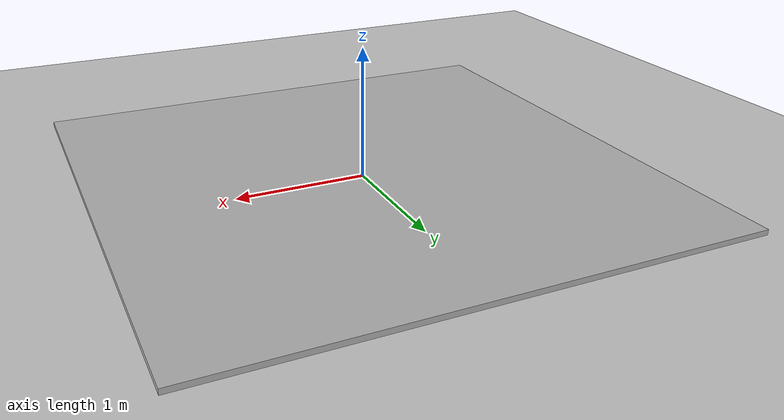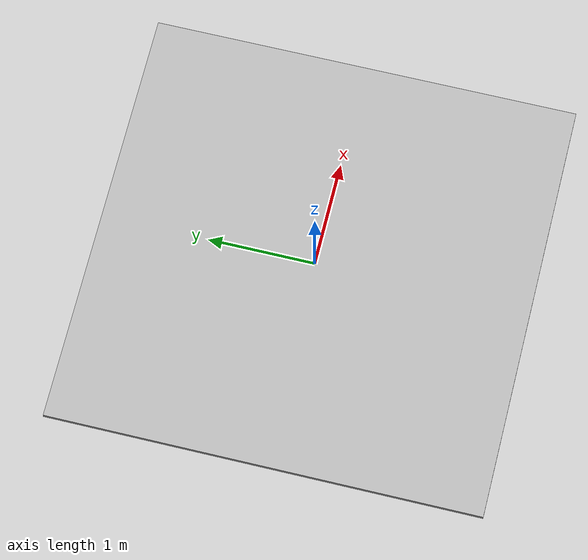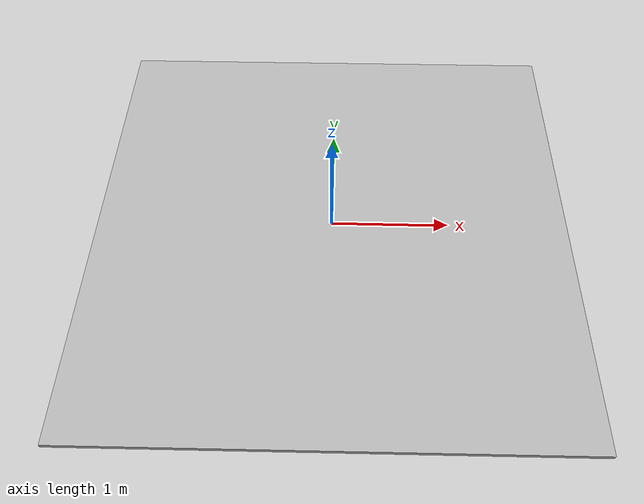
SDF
<?xml version="1.0" ?>
<sdf version="1.5">
  <world name="default">
    <include>
      <uri>model://ground_plane</uri>
    </include>
    <include>
      <uri>model://sun</uri>
    </include>
    <model name="mass_scale">
      <link name="flat_plate">
        <pose>0 0 0.04 0 0 0</pose>
        <inertial>
          <mass>1.0</mass>
          <inertia>
            <ixx>1.33347</ixx>
            <ixy>0.</ixy>
            <ixz>0.</ixz>
            <iyy>1.33347</iyy>
            <iyz>0.</iyz>
            <izz>2.66667</izz>
          </inertia>
        </inertial>
        <visual name="visual">
          <geometry>
            <box>
              <size>4 4 0.04</size>
            </box>
          </geometry>
        </visual>
        <collision name="collision">
          <geometry>
            <box>
              <size>4 4 0.04</size>
            </box>
          </geometry>
        </collision>
      </link>
      <joint name="joint" type="fixed">
        <parent>world</parent>
        <child>flat_plate</child>
        <sensor name="force_torque" type="force_torque">
          <always_on>true</always_on>
          <visualize>true</visualize>
          <update_rate>100</update_rate>
        </sensor>
      </joint>
    </model>
  </world>
</sdf>
